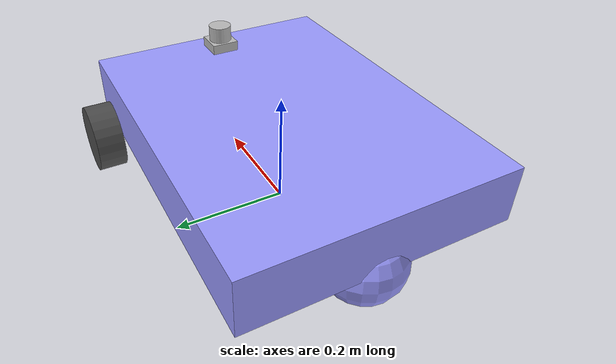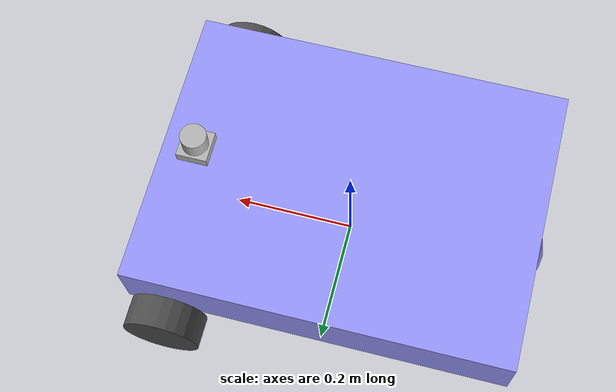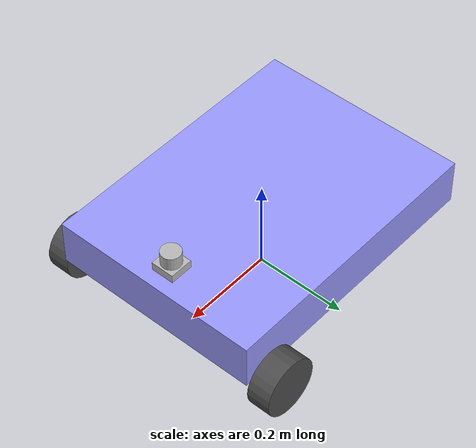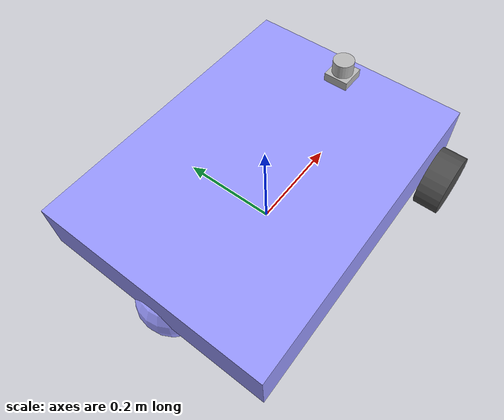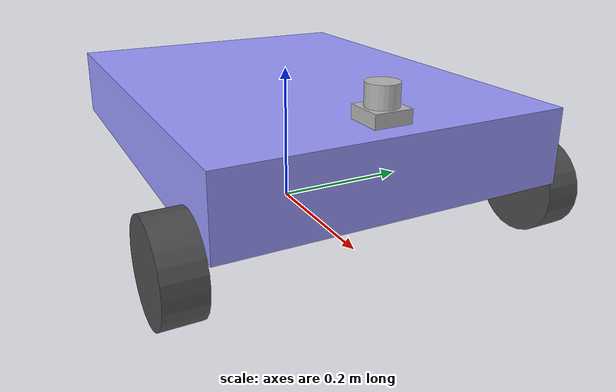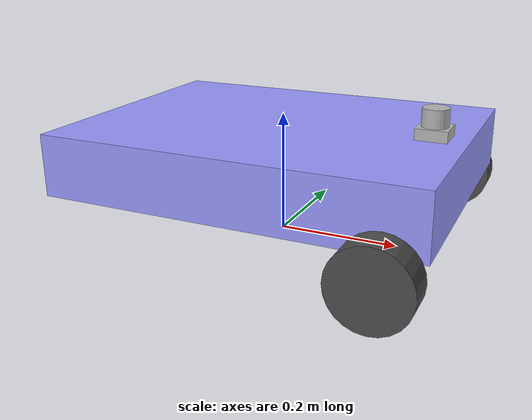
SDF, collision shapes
<?xml version='1.0'?>
<sdf version='1.4'>
  <model name="Collection_bot">
    <static>false</static>

    <link name="base_link">
      <pose>0 0 0.138 0 0 0</pose>
      <inertial>
        <mass>2.0</mass>
        <inertia>
          <ixx>.25</ixx>
          <ixy>0.0</ixy>
          <ixz>0.0</ixz>
          <iyy>.25</iyy>
          <iyz>0.0</iyz>
          <izz>.25</izz>
        </inertia>
      </inertial>
      <collision name="collision">
        <geometry>
          <box>
            <size>0.6096 0.4572 0.1</size>
          </box>
        </geometry>
      </collision>
      <visual name="visual">
        <geometry>
          <box>
            <size>0.6096 0.4572 0.1</size>
          </box>
        </geometry>
        <material>
          <ambient>0.6 0.6 1 1</ambient>
          <diffuse>0.6 0.6 1 1</diffuse>
          <specular>0.1 0.1 0.1 1</specular>
          <emissive>0 0 0 0</emissive>
        </material>
      </visual>

      <collision name="caster_collision">
        <pose>-0.254 0 -0.06905 0 0 0</pose>
        <geometry>
          <sphere>
            <radius>0.06905</radius>
          </sphere>
        </geometry>
        <surface>
          <friction>
            <ode>
              <mu>0</mu>
              <mu2>0</mu2>
              <slip1>1.0</slip1>
              <slip2>1.0</slip2>
            </ode>
          </friction>
        </surface>
      </collision>
      <visual name="caster_visual">
        <pose>-0.254 0 -0.06905 0 0 0</pose>
        <geometry>
          <sphere>
            <radius>0.06905</radius>
          </sphere>
        </geometry>
        <material>
          <ambient>0.3 0.3 0.3 1</ambient>
          <diffuse>0.3 0.3 0.3 1</diffuse>
          <specular>0.1 0.1 0.1 1</specular>
          <emissive>0 0 0 0</emissive>
        </material>
      </visual>
    </link>

    <link name="left_wheel_link">
      <pose>0.2413 -0.2536 0.0619125 1.57079632679 0 0</pose>
      <inertial>
        <mass>.143</mass>
        <inertia>
          <ixx>.00041955</ixx>
          <ixy>0.0</ixy>
          <ixz>0.0</ixz>
          <iyy>.00027407</iyy>
          <iyz>0.0</iyz>
          <izz>.00041955</izz>
        </inertia>
      </inertial>
      <collision name="collision">
        <geometry>
          <cylinder>
            <length>0.05</length>
            <radius>0.0619125</radius>
          </cylinder>
        </geometry>
      </collision>
      <visual name="visual">
        <geometry>
          <cylinder>
            <length>0.05</length>
            <radius>0.0619125</radius>
          </cylinder>
        </geometry>
        <material>
          <ambient>0.3 0.3 0.3 1</ambient>
          <diffuse>0.3 0.3 0.3 1</diffuse>
          <specular>0.1 0.1 0.1 1</specular>
          <emissive>0 0 0 0</emissive>
        </material>
      </visual>
    </link>

    <link name="right_wheel_link">
      <pose>0.2413 0.2536 0.0619125 1.57079632679 0 0</pose>
      <inertial>
        <mass>.143</mass>
        <inertia>
          <ixx>.00041955</ixx>
          <ixy>0.0</ixy>
          <ixz>0.0</ixz>
          <iyy>.00027407</iyy>
          <iyz>0.0</iyz>
          <izz>.00041955</izz>
        </inertia>
      </inertial>
      <collision name="collision">
        <geometry>
          <cylinder>
            <length>0.05</length>
            <radius>0.0619125</radius>
          </cylinder>
        </geometry>
      </collision>
      <visual name="visual">
        <geometry>
          <cylinder>
            <length>0.05</length>
            <radius>0.0619125</radius>
          </cylinder>
        </geometry>
        <material>
          <ambient>0.3 0.3 0.3 1</ambient>
          <diffuse>0.3 0.3 0.3 1</diffuse>
          <specular>0.1 0.1 0.1 1</specular>
          <emissive>0 0 0 0</emissive>
        </material>
      </visual>
    </link>

    <!-- Joints -->
    <joint name="base_left_wheel" type="revolute">
      <parent>base_link</parent>
      <child>left_wheel_link</child>
      <axis>
        <xyz>0 1 0</xyz>
      </axis>
    </joint>

    <joint name="base_right_wheel" type="revolute">
      <parent>base_link</parent>
      <child>right_wheel_link</child>
      <axis>
        <xyz>0 1 0</xyz>
      </axis>
    </joint>

    <link name="hokuyo_link">
      <pose>0.25 0 .2 0 0 0</pose>
      <inertial>
        <mass>0.1</mass>
      </inertial>
      <visual name="visual">
        <geometry>
          <mesh>
            <uri>model://hokuyo/meshes/hokuyo.dae</uri>
          </mesh>
        </geometry>
      </visual>

      <collision name="collision-base">
        <pose>0 0 -0.0145 0 0 0</pose>
        <geometry>
          <box>
            <size>0.05 0.05 0.041</size>
          </box>
        </geometry>
      </collision>

      <collision name="collision-top">
        <pose>0 0 0.0205 0 0 0</pose>
        <geometry>
          <cylinder>
            <radius>0.021</radius>
            <length>0.029</length>
          </cylinder>
        </geometry>
      </collision>

      <sensor name="laser" type="ray">
        <pose>0.01 0 0.0175 0 -0 0</pose>
        <ray>
          <scan>
            <horizontal>
              <samples>640</samples>
              <resolution>1</resolution>
              <min_angle>-2.26889</min_angle>
              <max_angle>2.268899</max_angle>
            </horizontal>
          </scan>
          <range>
            <min>0.08</min>
            <max>10</max>
            <resolution>0.01</resolution>
          </range>
        </ray>

        <plugin name="laser" filename="libgazebo_ros_laser.so">
          <frameName>hokuyo_frame</frameName>
          <topicName>scan</topicName>
        </plugin>
        <always_on>1</always_on>
        <update_rate>30</update_rate>
        <visualize>true</visualize>
      </sensor>
    </link>

    <joint name="hokuyo_joint" type="revolute">
      <child>hokuyo_link</child>
      <parent>base_link</parent>
      <axis>
        <xyz>0 0 1</xyz>
        <limit>
          <upper>0</upper>
          <lower>0</lower>
        </limit>
      </axis>
    </joint>

  <plugin name="differential_drive_controller" filename="libgazebo_ros_diff_drive.so">
      <alwaysOn>true</alwaysOn>
      <updateRate>20</updateRate>
      <leftJoint>base_left_wheel</leftJoint>
      <rightJoint>base_right_wheel</rightJoint>
      <wheelSeparation>0.5072</wheelSeparation>
      <wheelDiameter>0.123825</wheelDiameter>
      <torque>20</torque>
      <commandTopic>cmd_vel</commandTopic>
      <odometryTopic>odom</odometryTopic>
      <odometryFrame>odom</odometryFrame>
      <robotBaseFrame>robot_center</robotBaseFrame>
    </plugin>

  </model>

</sdf>
